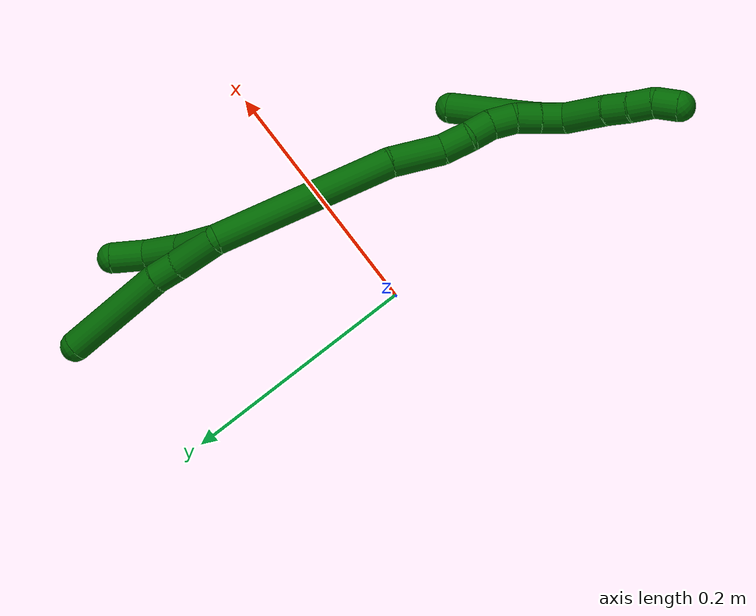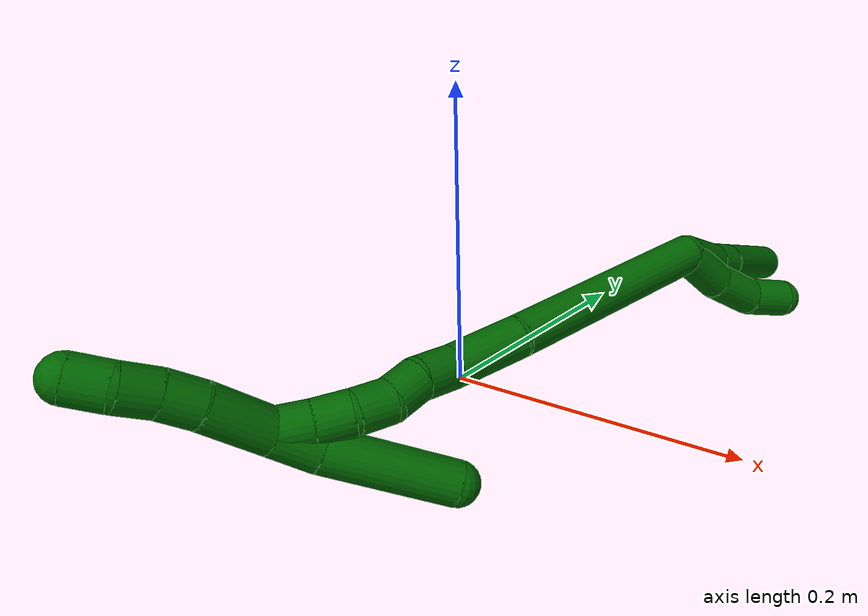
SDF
<sdf version="1.7">
 <world name="default">
  <model name="6">
   <static>0</static>
   <link name="6">
    <collision name="collision-cylinder-e_1_2_8">
     <pose>-0.000378 -0.000271 -0.019675 3.1278 -0.019215 -1.89641</pose>
     <geometry><cylinder><radius>0.0125</radius><length>0.039361</length></cylinder></geometry>
     <surface>
      <friction><ode><mu>1.16</mu><mu2>1.16</mu2><slip1>0</slip1><slip2>0</slip2></ode></friction>
      <contact><ode><kp>1e+06</kp><kd>1</kd><max_vel>0</max_vel><min_depth>0.001</min_depth></ode></contact>
     </surface>
    </collision>
    <visual name="visual-cylinder-e_1_2_8">
     <pose>-0.000378 -0.000271 -0.019675 3.1278 -0.019215 -1.89641</pose>
     <geometry><cylinder><radius>0.0125</radius><length>0.039361</length></cylinder></geometry>
     <material><ambient>0 0.392157 0.003922 1</ambient></material>
    </visual>
    <collision name="collision-cylinder-e_2_8_9">
     <pose>-0.00052 0.00048 -0.049979 -3.04571 0.022162 -0.453978</pose>
     <geometry><cylinder><radius>0.0125</radius><length>0.021362</length></cylinder></geometry>
     <surface>
      <friction><ode><mu>1.16</mu><mu2>1.16</mu2><slip1>0</slip1><slip2>0</slip2></ode></friction>
      <contact><ode><kp>1e+06</kp><kd>1</kd><max_vel>0</max_vel><min_depth>0.001</min_depth></ode></contact>
     </surface>
    </collision>
    <visual name="visual-cylinder-e_2_8_9">
     <pose>-0.00052 0.00048 -0.049979 -3.04571 0.022162 -0.453978</pose>
     <geometry><cylinder><radius>0.0125</radius><length>0.021362</length></cylinder></geometry>
     <material><ambient>0 0.392157 0.003922 1</ambient></material>
    </visual>
    <collision name="collision-cylinder-e_3_9_6">
     <pose>-0.005504 0.005516 -0.104758 -3.05092 -0.117222 1.82532</pose>
     <geometry><cylinder><radius>0.0125</radius><length>0.089277</length></cylinder></geometry>
     <surface>
      <friction><ode><mu>1.16</mu><mu2>1.16</mu2><slip1>0</slip1><slip2>0</slip2></ode></friction>
      <contact><ode><kp>1e+06</kp><kd>1</kd><max_vel>0</max_vel><min_depth>0.001</min_depth></ode></contact>
     </surface>
    </collision>
    <visual name="visual-cylinder-e_3_9_6">
     <pose>-0.005504 0.005516 -0.104758 -3.05092 -0.117222 1.82532</pose>
     <geometry><cylinder><radius>0.0125</radius><length>0.089277</length></cylinder></geometry>
     <material><ambient>0 0.392157 0.003922 1</ambient></material>
    </visual>
    <collision name="collision-cylinder-e_1_2_10">
     <pose>0.0037 -0.00657 -0.016639 2.76554 0.203971 0.98696</pose>
     <geometry><cylinder><radius>0.0125</radius><length>0.036535</length></cylinder></geometry>
     <surface>
      <friction><ode><mu>1.16</mu><mu2>1.16</mu2><slip1>0</slip1><slip2>0</slip2></ode></friction>
      <contact><ode><kp>1e+06</kp><kd>1</kd><max_vel>0</max_vel><min_depth>0.001</min_depth></ode></contact>
     </surface>
    </collision>
    <visual name="visual-cylinder-e_1_2_10">
     <pose>0.0037 -0.00657 -0.016639 2.76554 0.203971 0.98696</pose>
     <geometry><cylinder><radius>0.0125</radius><length>0.036535</length></cylinder></geometry>
     <material><ambient>0 0.392157 0.003922 1</ambient></material>
    </visual>
    <collision name="collision-cylinder-e_2_10_11">
     <pose>0.012911 -0.016523 -0.049067 2.93052 0.328848 2.00517</pose>
     <geometry><cylinder><radius>0.0125</radius><length>0.034123</length></cylinder></geometry>
     <surface>
      <friction><ode><mu>1.16</mu><mu2>1.16</mu2><slip1>0</slip1><slip2>0</slip2></ode></friction>
      <contact><ode><kp>1e+06</kp><kd>1</kd><max_vel>0</max_vel><min_depth>0.001</min_depth></ode></contact>
     </surface>
    </collision>
    <visual name="visual-cylinder-e_2_10_11">
     <pose>0.012911 -0.016523 -0.049067 2.93052 0.328848 2.00517</pose>
     <geometry><cylinder><radius>0.0125</radius><length>0.034123</length></cylinder></geometry>
     <material><ambient>0 0.392157 0.003922 1</ambient></material>
    </visual>
    <collision name="collision-cylinder-e_3_11_5">
     <pose>0.025104 -0.018457 -0.077835 -3.03044 0.472983 -2.68784</pose>
     <geometry><cylinder><radius>0.0125</radius><length>0.029341</length></cylinder></geometry>
     <surface>
      <friction><ode><mu>1.16</mu><mu2>1.16</mu2><slip1>0</slip1><slip2>0</slip2></ode></friction>
      <contact><ode><kp>1e+06</kp><kd>1</kd><max_vel>0</max_vel><min_depth>0.001</min_depth></ode></contact>
     </surface>
    </collision>
    <visual name="visual-cylinder-e_3_11_5">
     <pose>0.025104 -0.018457 -0.077835 -3.03044 0.472983 -2.68784</pose>
     <geometry><cylinder><radius>0.0125</radius><length>0.029341</length></cylinder></geometry>
     <material><ambient>0 0.392157 0.003922 1</ambient></material>
    </visual>
    <collision name="collision-cylinder-e_1_2_12">
     <pose>-0.012822 -0.032685 0.06697 0.45405 -0.170395 -0.039453</pose>
     <geometry><cylinder><radius>0.0125</radius><length>0.151231</length></cylinder></geometry>
     <surface>
      <friction><ode><mu>1.16</mu><mu2>1.16</mu2><slip1>0</slip1><slip2>0</slip2></ode></friction>
      <contact><ode><kp>1e+06</kp><kd>1</kd><max_vel>0</max_vel><min_depth>0.001</min_depth></ode></contact>
     </surface>
    </collision>
    <visual name="visual-cylinder-e_1_2_12">
     <pose>-0.012822 -0.032685 0.06697 0.45405 -0.170395 -0.039453</pose>
     <geometry><cylinder><radius>0.0125</radius><length>0.151231</length></cylinder></geometry>
     <material><ambient>0 0.392157 0.003922 1</ambient></material>
    </visual>
    <collision name="collision-cylinder-e_2_12_13">
     <pose>-0.033109 -0.075786 0.151564 0.533773 -0.349629 -0.096503</pose>
     <geometry><cylinder><radius>0.0125</radius><length>0.043579</length></cylinder></geometry>
     <surface>
      <friction><ode><mu>1.16</mu><mu2>1.16</mu2><slip1>0</slip1><slip2>0</slip2></ode></friction>
      <contact><ode><kp>1e+06</kp><kd>1</kd><max_vel>0</max_vel><min_depth>0.001</min_depth></ode></contact>
     </surface>
    </collision>
    <visual name="visual-cylinder-e_2_12_13">
     <pose>-0.033109 -0.075786 0.151564 0.533773 -0.349629 -0.096503</pose>
     <geometry><cylinder><radius>0.0125</radius><length>0.043579</length></cylinder></geometry>
     <material><ambient>0 0.392157 0.003922 1</ambient></material>
    </visual>
    <collision name="collision-cylinder-e_3_13_14">
     <pose>-0.042172 -0.09008 0.180537 0.329231 -0.132545 -0.02205</pose>
     <geometry><cylinder><radius>0.0125</radius><length>0.0242</length></cylinder></geometry>
     <surface>
      <friction><ode><mu>1.16</mu><mu2>1.16</mu2><slip1>0</slip1><slip2>0</slip2></ode></friction>
      <contact><ode><kp>1e+06</kp><kd>1</kd><max_vel>0</max_vel><min_depth>0.001</min_depth></ode></contact>
     </surface>
    </collision>
    <visual name="visual-cylinder-e_3_13_14">
     <pose>-0.042172 -0.09008 0.180537 0.329231 -0.132545 -0.02205</pose>
     <geometry><cylinder><radius>0.0125</radius><length>0.0242</length></cylinder></geometry>
     <material><ambient>0 0.392157 0.003922 1</ambient></material>
    </visual>
    <collision name="collision-cylinder-e_4_14_15">
     <pose>-0.044608 -0.099757 0.199992 0.621038 -0.083782 -0.0269</pose>
     <geometry><cylinder><radius>0.0125</radius><length>0.020003</length></cylinder></geometry>
     <surface>
      <friction><ode><mu>1.16</mu><mu2>1.16</mu2><slip1>0</slip1><slip2>0</slip2></ode></friction>
      <contact><ode><kp>1e+06</kp><kd>1</kd><max_vel>0</max_vel><min_depth>0.001</min_depth></ode></contact>
     </surface>
    </collision>
    <visual name="visual-cylinder-e_4_14_15">
     <pose>-0.044608 -0.099757 0.199992 0.621038 -0.083782 -0.0269</pose>
     <geometry><cylinder><radius>0.0125</radius><length>0.020003</length></cylinder></geometry>
     <material><ambient>0 0.392157 0.003922 1</ambient></material>
    </visual>
    <collision name="collision-cylinder-e_5_15_16">
     <pose>-0.048801 -0.109302 0.217144 0.392553 -0.330195 -0.066234</pose>
     <geometry><cylinder><radius>0.0125</radius><length>0.020703</length></cylinder></geometry>
     <surface>
      <friction><ode><mu>1.16</mu><mu2>1.16</mu2><slip1>0</slip1><slip2>0</slip2></ode></friction>
      <contact><ode><kp>1e+06</kp><kd>1</kd><max_vel>0</max_vel><min_depth>0.001</min_depth></ode></contact>
     </surface>
    </collision>
    <visual name="visual-cylinder-e_5_15_16">
     <pose>-0.048801 -0.109302 0.217144 0.392553 -0.330195 -0.066234</pose>
     <geometry><cylinder><radius>0.0125</radius><length>0.020703</length></cylinder></geometry>
     <material><ambient>0 0.392157 0.003922 1</ambient></material>
    </visual>
    <collision name="collision-cylinder-e_6_16_17">
     <pose>-0.057784 -0.116845 0.23367 0.469885 -0.590859 -0.145436</pose>
     <geometry><cylinder><radius>0.0125</radius><length>0.0202</length></cylinder></geometry>
     <surface>
      <friction><ode><mu>1.16</mu><mu2>1.16</mu2><slip1>0</slip1><slip2>0</slip2></ode></friction>
      <contact><ode><kp>1e+06</kp><kd>1</kd><max_vel>0</max_vel><min_depth>0.001</min_depth></ode></contact>
     </surface>
    </collision>
    <visual name="visual-cylinder-e_6_16_17">
     <pose>-0.057784 -0.116845 0.23367 0.469885 -0.590859 -0.145436</pose>
     <geometry><cylinder><radius>0.0125</radius><length>0.0202</length></cylinder></geometry>
     <material><ambient>0 0.392157 0.003922 1</ambient></material>
    </visual>
    <collision name="collision-cylinder-e_7_17_1">
     <pose>-0.06894 -0.12377 0.248926 0.382275 -0.583149 -0.116019</pose>
     <geometry><cylinder><radius>0.0125</radius><length>0.020084</length></cylinder></geometry>
     <surface>
      <friction><ode><mu>1.16</mu><mu2>1.16</mu2><slip1>0</slip1><slip2>0</slip2></ode></friction>
      <contact><ode><kp>1e+06</kp><kd>1</kd><max_vel>0</max_vel><min_depth>0.001</min_depth></ode></contact>
     </surface>
    </collision>
    <visual name="visual-cylinder-e_7_17_1">
     <pose>-0.06894 -0.12377 0.248926 0.382275 -0.583149 -0.116019</pose>
     <geometry><cylinder><radius>0.0125</radius><length>0.020084</length></cylinder></geometry>
     <material><ambient>0 0.392157 0.003922 1</ambient></material>
    </visual>
    <collision name="collision-cylinder-e_1_1_18">
     <pose>-0.068246 -0.130302 0.245701 2.84148 0.495384 2.0639</pose>
     <geometry><cylinder><radius>0.0125</radius><length>0.026182</length></cylinder></geometry>
     <surface>
      <friction><ode><mu>1.16</mu><mu2>1.16</mu2><slip1>0</slip1><slip2>0</slip2></ode></friction>
      <contact><ode><kp>1e+06</kp><kd>1</kd><max_vel>0</max_vel><min_depth>0.001</min_depth></ode></contact>
     </surface>
    </collision>
    <visual name="visual-cylinder-e_1_1_18">
     <pose>-0.068246 -0.130302 0.245701 2.84148 0.495384 2.0639</pose>
     <geometry><cylinder><radius>0.0125</radius><length>0.026182</length></cylinder></geometry>
     <material><ambient>0 0.392157 0.003922 1</ambient></material>
    </visual>
    <collision name="collision-cylinder-e_2_18_4">
     <pose>-0.040494 -0.138749 0.205147 2.97258 0.622801 2.62693</pose>
     <geometry><cylinder><radius>0.0125</radius><length>0.073818</length></cylinder></geometry>
     <surface>
      <friction><ode><mu>1.16</mu><mu2>1.16</mu2><slip1>0</slip1><slip2>0</slip2></ode></friction>
      <contact><ode><kp>1e+06</kp><kd>1</kd><max_vel>0</max_vel><min_depth>0.001</min_depth></ode></contact>
     </surface>
    </collision>
    <visual name="visual-cylinder-e_2_18_4">
     <pose>-0.040494 -0.138749 0.205147 2.97258 0.622801 2.62693</pose>
     <geometry><cylinder><radius>0.0125</radius><length>0.073818</length></cylinder></geometry>
     <material><ambient>0 0.392157 0.003922 1</ambient></material>
    </visual>
    <collision name="collision-cylinder-e_1_1_19">
     <pose>-0.080119 -0.121465 0.274413 -0.297642 -0.296033 0.044704</pose>
     <geometry><cylinder><radius>0.0125</radius><length>0.038733</length></cylinder></geometry>
     <surface>
      <friction><ode><mu>1.16</mu><mu2>1.16</mu2><slip1>0</slip1><slip2>0</slip2></ode></friction>
      <contact><ode><kp>1e+06</kp><kd>1</kd><max_vel>0</max_vel><min_depth>0.001</min_depth></ode></contact>
     </surface>
    </collision>
    <visual name="visual-cylinder-e_1_1_19">
     <pose>-0.080119 -0.121465 0.274413 -0.297642 -0.296033 0.044704</pose>
     <geometry><cylinder><radius>0.0125</radius><length>0.038733</length></cylinder></geometry>
     <material><ambient>0 0.392157 0.003922 1</ambient></material>
    </visual>
    <collision name="collision-cylinder-e_2_19_20">
     <pose>-0.089673 -0.114009 0.301549 -0.211421 -0.384744 0.041329</pose>
     <geometry><cylinder><radius>0.0125</radius><length>0.020803</length></cylinder></geometry>
     <surface>
      <friction><ode><mu>1.16</mu><mu2>1.16</mu2><slip1>0</slip1><slip2>0</slip2></ode></friction>
      <contact><ode><kp>1e+06</kp><kd>1</kd><max_vel>0</max_vel><min_depth>0.001</min_depth></ode></contact>
     </surface>
    </collision>
    <visual name="visual-cylinder-e_2_19_20">
     <pose>-0.089673 -0.114009 0.301549 -0.211421 -0.384744 0.041329</pose>
     <geometry><cylinder><radius>0.0125</radius><length>0.020803</length></cylinder></geometry>
     <material><ambient>0 0.392157 0.003922 1</ambient></material>
    </visual>
    <collision name="collision-cylinder-e_3_20_21">
     <pose>-0.097041 -0.111318 0.320413 -0.070655 -0.350993 0.012534</pose>
     <geometry><cylinder><radius>0.0125</radius><length>0.020152</length></cylinder></geometry>
     <surface>
      <friction><ode><mu>1.16</mu><mu2>1.16</mu2><slip1>0</slip1><slip2>0</slip2></ode></friction>
      <contact><ode><kp>1e+06</kp><kd>1</kd><max_vel>0</max_vel><min_depth>0.001</min_depth></ode></contact>
     </surface>
    </collision>
    <visual name="visual-cylinder-e_3_20_21">
     <pose>-0.097041 -0.111318 0.320413 -0.070655 -0.350993 0.012534</pose>
     <geometry><cylinder><radius>0.0125</radius><length>0.020152</length></cylinder></geometry>
     <material><ambient>0 0.392157 0.003922 1</ambient></material>
    </visual>
    <collision name="collision-cylinder-e_4_21_3">
     <pose>-0.106858 -0.109978 0.337747 -0.084965 -0.675756 0.029868</pose>
     <geometry><cylinder><radius>0.0125</radius><length>0.020313</length></cylinder></geometry>
     <surface>
      <friction><ode><mu>1.16</mu><mu2>1.16</mu2><slip1>0</slip1><slip2>0</slip2></ode></friction>
      <contact><ode><kp>1e+06</kp><kd>1</kd><max_vel>0</max_vel><min_depth>0.001</min_depth></ode></contact>
     </surface>
    </collision>
    <visual name="visual-cylinder-e_4_21_3">
     <pose>-0.106858 -0.109978 0.337747 -0.084965 -0.675756 0.029868</pose>
     <geometry><cylinder><radius>0.0125</radius><length>0.020313</length></cylinder></geometry>
     <material><ambient>0 0.392157 0.003922 1</ambient></material>
    </visual>
    <collision name="collision-sphere-3">
     <pose>-0.113211 -0.109305 0.345643 0 -0 0</pose>
     <geometry><sphere><radius>0.0125</radius></sphere></geometry>
     <surface>
      <friction><ode><mu>1.16</mu><mu2>1.16</mu2><slip1>0</slip1><slip2>0</slip2></ode></friction>
      <contact><ode><kp>1e+06</kp><kd>1</kd><max_vel>0</max_vel><min_depth>0.001</min_depth></ode></contact>
     </surface>
    </collision>
    <visual name="visual-sphere-3">
     <pose>-0.113211 -0.109305 0.345643 0 -0 0</pose>
     <geometry><sphere><radius>0.0125</radius></sphere></geometry>
     <material><ambient>0 0.392157 0.003922 1</ambient></material>
    </visual>
    <collision name="collision-sphere-21">
     <pose>-0.100505 -0.11065 0.329851 0 -0 0</pose>
     <geometry><sphere><radius>0.0125</radius></sphere></geometry>
     <surface>
      <friction><ode><mu>1.16</mu><mu2>1.16</mu2><slip1>0</slip1><slip2>0</slip2></ode></friction>
      <contact><ode><kp>1e+06</kp><kd>1</kd><max_vel>0</max_vel><min_depth>0.001</min_depth></ode></contact>
     </surface>
    </collision>
    <visual name="visual-sphere-21">
     <pose>-0.100505 -0.11065 0.329851 0 -0 0</pose>
     <geometry><sphere><radius>0.0125</radius></sphere></geometry>
     <material><ambient>0 0.392157 0.003922 1</ambient></material>
    </visual>
    <collision name="collision-sphere-20">
     <pose>-0.093577 -0.111986 0.310975 0 -0 0</pose>
     <geometry><sphere><radius>0.0125</radius></sphere></geometry>
     <surface>
      <friction><ode><mu>1.16</mu><mu2>1.16</mu2><slip1>0</slip1><slip2>0</slip2></ode></friction>
      <contact><ode><kp>1e+06</kp><kd>1</kd><max_vel>0</max_vel><min_depth>0.001</min_depth></ode></contact>
     </surface>
    </collision>
    <visual name="visual-sphere-20">
     <pose>-0.093577 -0.111986 0.310975 0 -0 0</pose>
     <geometry><sphere><radius>0.0125</radius></sphere></geometry>
     <material><ambient>0 0.392157 0.003922 1</ambient></material>
    </visual>
    <collision name="collision-sphere-19">
     <pose>-0.085769 -0.116032 0.292123 0 -0 0</pose>
     <geometry><sphere><radius>0.0125</radius></sphere></geometry>
     <surface>
      <friction><ode><mu>1.16</mu><mu2>1.16</mu2><slip1>0</slip1><slip2>0</slip2></ode></friction>
      <contact><ode><kp>1e+06</kp><kd>1</kd><max_vel>0</max_vel><min_depth>0.001</min_depth></ode></contact>
     </surface>
    </collision>
    <visual name="visual-sphere-19">
     <pose>-0.085769 -0.116032 0.292123 0 -0 0</pose>
     <geometry><sphere><radius>0.0125</radius></sphere></geometry>
     <material><ambient>0 0.392157 0.003922 1</ambient></material>
    </visual>
    <collision name="collision-sphere-11">
     <pose>0.018421 -0.019906 -0.064856 0 -0 0</pose>
     <geometry><sphere><radius>0.0125</radius></sphere></geometry>
     <surface>
      <friction><ode><mu>1.16</mu><mu2>1.16</mu2><slip1>0</slip1><slip2>0</slip2></ode></friction>
      <contact><ode><kp>1e+06</kp><kd>1</kd><max_vel>0</max_vel><min_depth>0.001</min_depth></ode></contact>
     </surface>
    </collision>
    <visual name="visual-sphere-11">
     <pose>0.018421 -0.019906 -0.064856 0 -0 0</pose>
     <geometry><sphere><radius>0.0125</radius></sphere></geometry>
     <material><ambient>0 0.392157 0.003922 1</ambient></material>
    </visual>
    <collision name="collision-sphere-10">
     <pose>0.007401 -0.013139 -0.033278 0 -0 0</pose>
     <geometry><sphere><radius>0.0125</radius></sphere></geometry>
     <surface>
      <friction><ode><mu>1.16</mu><mu2>1.16</mu2><slip1>0</slip1><slip2>0</slip2></ode></friction>
      <contact><ode><kp>1e+06</kp><kd>1</kd><max_vel>0</max_vel><min_depth>0.001</min_depth></ode></contact>
     </surface>
    </collision>
    <visual name="visual-sphere-10">
     <pose>0.007401 -0.013139 -0.033278 0 -0 0</pose>
     <geometry><sphere><radius>0.0125</radius></sphere></geometry>
     <material><ambient>0 0.392157 0.003922 1</ambient></material>
    </visual>
    <collision name="collision-sphere-6">
     <pose>-0.010724 0.00953 -0.148909 0 -0 0</pose>
     <geometry><sphere><radius>0.0125</radius></sphere></geometry>
     <surface>
      <friction><ode><mu>1.16</mu><mu2>1.16</mu2><slip1>0</slip1><slip2>0</slip2></ode></friction>
      <contact><ode><kp>1e+06</kp><kd>1</kd><max_vel>0</max_vel><min_depth>0.001</min_depth></ode></contact>
     </surface>
    </collision>
    <visual name="visual-sphere-6">
     <pose>-0.010724 0.00953 -0.148909 0 -0 0</pose>
     <geometry><sphere><radius>0.0125</radius></sphere></geometry>
     <material><ambient>0 0.392157 0.003922 1</ambient></material>
    </visual>
    <collision name="collision-sphere-9">
     <pose>-0.000283 0.001502 -0.060608 0 -0 0</pose>
     <geometry><sphere><radius>0.0125</radius></sphere></geometry>
     <surface>
      <friction><ode><mu>1.16</mu><mu2>1.16</mu2><slip1>0</slip1><slip2>0</slip2></ode></friction>
      <contact><ode><kp>1e+06</kp><kd>1</kd><max_vel>0</max_vel><min_depth>0.001</min_depth></ode></contact>
     </surface>
    </collision>
    <visual name="visual-sphere-9">
     <pose>-0.000283 0.001502 -0.060608 0 -0 0</pose>
     <geometry><sphere><radius>0.0125</radius></sphere></geometry>
     <material><ambient>0 0.392157 0.003922 1</ambient></material>
    </visual>
    <collision name="collision-sphere-2">
     <geometry><sphere><radius>0.0125</radius></sphere></geometry>
     <surface>
      <friction><ode><mu>1.16</mu><mu2>1.16</mu2><slip1>0</slip1><slip2>0</slip2></ode></friction>
      <contact><ode><kp>1e+06</kp><kd>1</kd><max_vel>0</max_vel><min_depth>0.001</min_depth></ode></contact>
     </surface>
    </collision>
    <visual name="visual-sphere-2">
     <geometry><sphere><radius>0.0125</radius></sphere></geometry>
     <material><ambient>0 0.392157 0.003922 1</ambient></material>
    </visual>
    <collision name="collision-sphere-8">
     <pose>-0.000756 -0.000543 -0.03935 0 -0 0</pose>
     <geometry><sphere><radius>0.0125</radius></sphere></geometry>
     <surface>
      <friction><ode><mu>1.16</mu><mu2>1.16</mu2><slip1>0</slip1><slip2>0</slip2></ode></friction>
      <contact><ode><kp>1e+06</kp><kd>1</kd><max_vel>0</max_vel><min_depth>0.001</min_depth></ode></contact>
     </surface>
    </collision>
    <visual name="visual-sphere-8">
     <pose>-0.000756 -0.000543 -0.03935 0 -0 0</pose>
     <geometry><sphere><radius>0.0125</radius></sphere></geometry>
     <material><ambient>0 0.392157 0.003922 1</ambient></material>
    </visual>
    <collision name="collision-sphere-5">
     <pose>0.031787 -0.017008 -0.090815 0 -0 0</pose>
     <geometry><sphere><radius>0.0125</radius></sphere></geometry>
     <surface>
      <friction><ode><mu>1.16</mu><mu2>1.16</mu2><slip1>0</slip1><slip2>0</slip2></ode></friction>
      <contact><ode><kp>1e+06</kp><kd>1</kd><max_vel>0</max_vel><min_depth>0.001</min_depth></ode></contact>
     </surface>
    </collision>
    <visual name="visual-sphere-5">
     <pose>0.031787 -0.017008 -0.090815 0 -0 0</pose>
     <geometry><sphere><radius>0.0125</radius></sphere></geometry>
     <material><ambient>0 0.392157 0.003922 1</ambient></material>
    </visual>
    <collision name="collision-sphere-12">
     <pose>-0.025645 -0.065371 0.13394 0 -0 0</pose>
     <geometry><sphere><radius>0.0125</radius></sphere></geometry>
     <surface>
      <friction><ode><mu>1.16</mu><mu2>1.16</mu2><slip1>0</slip1><slip2>0</slip2></ode></friction>
      <contact><ode><kp>1e+06</kp><kd>1</kd><max_vel>0</max_vel><min_depth>0.001</min_depth></ode></contact>
     </surface>
    </collision>
    <visual name="visual-sphere-12">
     <pose>-0.025645 -0.065371 0.13394 0 -0 0</pose>
     <geometry><sphere><radius>0.0125</radius></sphere></geometry>
     <material><ambient>0 0.392157 0.003922 1</ambient></material>
    </visual>
    <collision name="collision-sphere-13">
     <pose>-0.040573 -0.086202 0.169187 0 -0 0</pose>
     <geometry><sphere><radius>0.0125</radius></sphere></geometry>
     <surface>
      <friction><ode><mu>1.16</mu><mu2>1.16</mu2><slip1>0</slip1><slip2>0</slip2></ode></friction>
      <contact><ode><kp>1e+06</kp><kd>1</kd><max_vel>0</max_vel><min_depth>0.001</min_depth></ode></contact>
     </surface>
    </collision>
    <visual name="visual-sphere-13">
     <pose>-0.040573 -0.086202 0.169187 0 -0 0</pose>
     <geometry><sphere><radius>0.0125</radius></sphere></geometry>
     <material><ambient>0 0.392157 0.003922 1</ambient></material>
    </visual>
    <collision name="collision-sphere-14">
     <pose>-0.043771 -0.093957 0.191887 0 -0 0</pose>
     <geometry><sphere><radius>0.0125</radius></sphere></geometry>
     <surface>
      <friction><ode><mu>1.16</mu><mu2>1.16</mu2><slip1>0</slip1><slip2>0</slip2></ode></friction>
      <contact><ode><kp>1e+06</kp><kd>1</kd><max_vel>0</max_vel><min_depth>0.001</min_depth></ode></contact>
     </surface>
    </collision>
    <visual name="visual-sphere-14">
     <pose>-0.043771 -0.093957 0.191887 0 -0 0</pose>
     <geometry><sphere><radius>0.0125</radius></sphere></geometry>
     <material><ambient>0 0.392157 0.003922 1</ambient></material>
    </visual>
    <collision name="collision-sphere-15">
     <pose>-0.045445 -0.105556 0.208097 0 -0 0</pose>
     <geometry><sphere><radius>0.0125</radius></sphere></geometry>
     <surface>
      <friction><ode><mu>1.16</mu><mu2>1.16</mu2><slip1>0</slip1><slip2>0</slip2></ode></friction>
      <contact><ode><kp>1e+06</kp><kd>1</kd><max_vel>0</max_vel><min_depth>0.001</min_depth></ode></contact>
     </surface>
    </collision>
    <visual name="visual-sphere-15">
     <pose>-0.045445 -0.105556 0.208097 0 -0 0</pose>
     <geometry><sphere><radius>0.0125</radius></sphere></geometry>
     <material><ambient>0 0.392157 0.003922 1</ambient></material>
    </visual>
    <collision name="collision-sphere-16">
     <pose>-0.052157 -0.113048 0.226192 0 -0 0</pose>
     <geometry><sphere><radius>0.0125</radius></sphere></geometry>
     <surface>
      <friction><ode><mu>1.16</mu><mu2>1.16</mu2><slip1>0</slip1><slip2>0</slip2></ode></friction>
      <contact><ode><kp>1e+06</kp><kd>1</kd><max_vel>0</max_vel><min_depth>0.001</min_depth></ode></contact>
     </surface>
    </collision>
    <visual name="visual-sphere-16">
     <pose>-0.052157 -0.113048 0.226192 0 -0 0</pose>
     <geometry><sphere><radius>0.0125</radius></sphere></geometry>
     <material><ambient>0 0.392157 0.003922 1</ambient></material>
    </visual>
    <collision name="collision-sphere-17">
     <pose>-0.06341 -0.120643 0.241149 0 -0 0</pose>
     <geometry><sphere><radius>0.0125</radius></sphere></geometry>
     <surface>
      <friction><ode><mu>1.16</mu><mu2>1.16</mu2><slip1>0</slip1><slip2>0</slip2></ode></friction>
      <contact><ode><kp>1e+06</kp><kd>1</kd><max_vel>0</max_vel><min_depth>0.001</min_depth></ode></contact>
     </surface>
    </collision>
    <visual name="visual-sphere-17">
     <pose>-0.06341 -0.120643 0.241149 0 -0 0</pose>
     <geometry><sphere><radius>0.0125</radius></sphere></geometry>
     <material><ambient>0 0.392157 0.003922 1</ambient></material>
    </visual>
    <collision name="collision-sphere-1">
     <pose>-0.07447 -0.126897 0.256704 0 -0 0</pose>
     <geometry><sphere><radius>0.0125</radius></sphere></geometry>
     <surface>
      <friction><ode><mu>1.16</mu><mu2>1.16</mu2><slip1>0</slip1><slip2>0</slip2></ode></friction>
      <contact><ode><kp>1e+06</kp><kd>1</kd><max_vel>0</max_vel><min_depth>0.001</min_depth></ode></contact>
     </surface>
    </collision>
    <visual name="visual-sphere-1">
     <pose>-0.07447 -0.126897 0.256704 0 -0 0</pose>
     <geometry><sphere><radius>0.0125</radius></sphere></geometry>
     <material><ambient>0 0.392157 0.003922 1</ambient></material>
    </visual>
    <collision name="collision-sphere-18">
     <pose>-0.062023 -0.133707 0.234699 0 -0 0</pose>
     <geometry><sphere><radius>0.0125</radius></sphere></geometry>
     <surface>
      <friction><ode><mu>1.16</mu><mu2>1.16</mu2><slip1>0</slip1><slip2>0</slip2></ode></friction>
      <contact><ode><kp>1e+06</kp><kd>1</kd><max_vel>0</max_vel><min_depth>0.001</min_depth></ode></contact>
     </surface>
    </collision>
    <visual name="visual-sphere-18">
     <pose>-0.062023 -0.133707 0.234699 0 -0 0</pose>
     <geometry><sphere><radius>0.0125</radius></sphere></geometry>
     <material><ambient>0 0.392157 0.003922 1</ambient></material>
    </visual>
    <collision name="collision-sphere-4">
     <pose>-0.018964 -0.143792 0.175595 0 -0 0</pose>
     <geometry><sphere><radius>0.0125</radius></sphere></geometry>
     <surface>
      <friction><ode><mu>1.16</mu><mu2>1.16</mu2><slip1>0</slip1><slip2>0</slip2></ode></friction>
      <contact><ode><kp>1e+06</kp><kd>1</kd><max_vel>0</max_vel><min_depth>0.001</min_depth></ode></contact>
     </surface>
    </collision>
    <visual name="visual-sphere-4">
     <pose>-0.018964 -0.143792 0.175595 0 -0 0</pose>
     <geometry><sphere><radius>0.0125</radius></sphere></geometry>
     <material><ambient>0 0.392157 0.003922 1</ambient></material>
    </visual>
    <inertial>
     <pose>-0.029244 -0.060788 0.10047 0 -0 0</pose>
     <mass>0.75</mass>
     <inertia>
      <ixx>0.000332</ixx>
      <ixy>0</ixy>
      <ixz>0</ixz>
      <iyy>0.000399</iyy>
      <iyz>0</iyz>
      <izz>0.000177</izz>
     </inertia>
    </inertial>
   </link>
   <pose>0.121801 0.085268 0.087 1.21005 -0.072862 -0.072389</pose>
  </model>
 </world>
</sdf>
